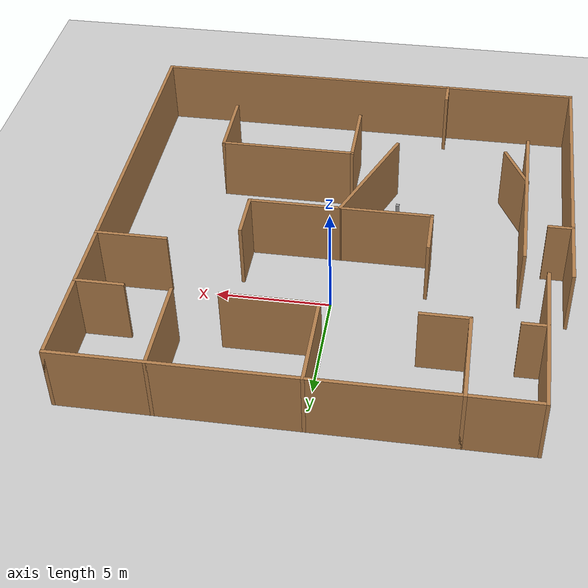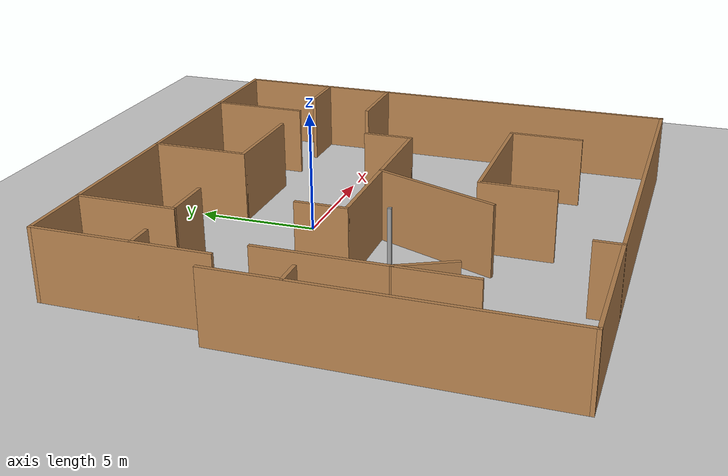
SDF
<sdf version="1.6">
 <world name="default">
  <light name="sun" type="directional">
   <pose>0 0 10 0 -0 0</pose>
   <diffuse>0.8 0.8 0.8 1</diffuse>
   <specular>0.2 0.2 0.2 1</specular>
   <attenuation>
    <range>1000</range>
    <constant>0.9</constant>
    <linear>0.01</linear>
    <quadratic>0.001</quadratic>
   </attenuation>
   <direction>-0.5 0.1 -0.9</direction>
  </light>
  <model name="ground_plane">
   <static>1</static>
   <link name="link">
    <collision name="collision">
     <geometry><plane><normal>0 0 1</normal><size>100 100</size></plane></geometry>
     <surface>
      <contact><collide_bitmask>65535</collide_bitmask></contact>
      <friction><ode><mu>100</mu><mu2>50</mu2></ode></friction>
     </surface>
    </collision>
    <visual name="visual">
     <cast_shadows>0</cast_shadows>
     <geometry><plane><normal>0 0 1</normal><size>100 100</size></plane></geometry>
     <material>
      <script><uri>file://media/materials/scripts/gazebo.material</uri><name>Gazebo/Grey</name></script>
     </material>
    </visual>
   </link>
  </model>
  <gravity>0 0 -9.8</gravity>
  <magnetic_field>6e-06 2.3e-05 -4.2e-05</magnetic_field>
  <atmosphere type="adiabatic"/>
  <physics name="default_physics" default="0" type="ode">
   <max_step_size>0.001</max_step_size>
   <real_time_factor>1</real_time_factor>
   <real_time_update_rate>1000</real_time_update_rate>
  </physics>
  <scene><ambient>0.4 0.4 0.4 1</ambient><background>0.7 0.7 0.7 1</background><shadows>1</shadows></scene>
  <spherical_coordinates>
   <surface_model>EARTH_WGS84</surface_model>
   <latitude_deg>0</latitude_deg>
   <longitude_deg>0</longitude_deg>
   <elevation>0</elevation>
   <heading_deg>0</heading_deg>
  </spherical_coordinates>
  <model name="ZY_world3">
   <pose>0 -3 0 0 -0 0</pose>
   <link name="Wall_0">
    <collision name="Wall_0_Collision">
     <geometry><box><size>3.15 0.15 3</size></box></geometry>
     <pose>0 0 1.5 0 -0 0</pose>
    </collision>
    <visual name="Wall_0_Visual">
     <pose>0 0 1.5 0 -0 0</pose>
     <geometry><box><size>3.15 0.15 3</size></box></geometry>
     <material>
      <script><uri>file://media/materials/scripts/gazebo.material</uri><name>Gazebo/Wood</name></script>
      <ambient>1 1 1 1</ambient>
     </material>
     <meta><layer>0</layer></meta>
    </visual>
    <pose>8.5 3 0 0 -0 0</pose>
   </link>
   <link name="Wall_11">
    <collision name="Wall_11_Collision">
     <geometry><box><size>0.15 0.15 2.5</size></box></geometry>
     <pose>0 0 1.25 0 -0 0</pose>
    </collision>
    <visual name="Wall_11_Visual">
     <pose>0 0 1.25 0 -0 0</pose>
     <geometry><box><size>0.15 0.15 2.5</size></box></geometry>
     <material>
      <script><uri>file://media/materials/scripts/gazebo.material</uri><name>Gazebo/Grey</name></script>
      <ambient>1 1 1 1</ambient>
     </material>
     <meta><layer>0</layer></meta>
    </visual>
    <pose>-2.41 -1.14 0 0 -0 0</pose>
   </link>
   <link name="Wall_14">
    <collision name="Wall_14_Collision">
     <geometry><box><size>3.15 0.15 3</size></box></geometry>
     <pose>0 0 1.5 0 -0 0</pose>
    </collision>
    <visual name="Wall_14_Visual">
     <pose>0 0 1.5 0 -0 0</pose>
     <geometry><box><size>3.15 0.15 3</size></box></geometry>
     <material>
      <script><uri>file://media/materials/scripts/gazebo.material</uri><name>Gazebo/Wood</name></script>
      <ambient>1 1 1 1</ambient>
     </material>
     <meta><layer>0</layer></meta>
    </visual>
    <pose>0 -5.5 0 0 -0 1.5708</pose>
   </link>
   <link name="Wall_15">
    <collision name="Wall_15_Collision">
     <geometry><box><size>6.15 0.15 3</size></box></geometry>
     <pose>0 0 1.5 0 -0 0</pose>
    </collision>
    <visual name="Wall_15_Visual">
     <pose>0 0 1.5 0 -0 0</pose>
     <geometry><box><size>6.15 0.15 3</size></box></geometry>
     <material>
      <script><uri>file://media/materials/scripts/gazebo.material</uri><name>Gazebo/Wood</name></script>
      <ambient>1 1 1 1</ambient>
     </material>
     <meta><layer>0</layer></meta>
    </visual>
    <pose>3 -4 0 0 -0 0</pose>
   </link>
   <link name="Wall_16">
    <collision name="Wall_16_Collision">
     <geometry><box><size>3.15 0.15 3</size></box></geometry>
     <pose>0 0 1.5 0 -0 0</pose>
    </collision>
    <visual name="Wall_16_Visual">
     <pose>0 0 1.5 0 -0 0</pose>
     <geometry><box><size>3.15 0.15 3</size></box></geometry>
     <material>
      <script><uri>file://media/materials/scripts/gazebo.material</uri><name>Gazebo/Wood</name></script>
      <ambient>1 1 1 1</ambient>
     </material>
     <meta><layer>0</layer></meta>
    </visual>
    <pose>6 -5.5 0 0 -0 -1.5708</pose>
   </link>
   <link name="Wall_18">
    <collision name="Wall_18_Collision">
     <geometry><box><size>19.15 0.15 3</size></box></geometry>
     <pose>0 0 1.5 0 -0 0</pose>
    </collision>
    <visual name="Wall_18_Visual">
     <pose>0 0 1.5 0 -0 0</pose>
     <geometry><box><size>19.15 0.15 3</size></box></geometry>
     <material>
      <script><uri>file://media/materials/scripts/gazebo.material</uri><name>Gazebo/Wood</name></script>
      <ambient>1 1 1 1</ambient>
     </material>
     <meta><layer>0</layer></meta>
    </visual>
    <pose>0.5 10 0 0 -0 0</pose>
   </link>
   <link name="Wall_19">
    <collision name="Wall_19_Collision">
     <geometry><box><size>20.15 0.15 3</size></box></geometry>
     <pose>0 0 1.5 0 -0 0</pose>
    </collision>
    <visual name="Wall_19_Visual">
     <pose>0 0 1.5 0 -0 0</pose>
     <geometry><box><size>20.15 0.15 3</size></box></geometry>
     <material>
      <script><uri>file://media/materials/scripts/gazebo.material</uri><name>Gazebo/Wood</name></script>
      <ambient>1 1 1 1</ambient>
     </material>
     <meta><layer>0</layer></meta>
    </visual>
    <pose>10 0 0 0 -0 -1.5708</pose>
   </link>
   <link name="Wall_20">
    <collision name="Wall_20_Collision">
     <geometry><box><size>20.15 0.15 3</size></box></geometry>
     <pose>0 0 1.5 0 -0 0</pose>
    </collision>
    <visual name="Wall_20_Visual">
     <pose>0 0 1.5 0 -0 0</pose>
     <geometry><box><size>20.15 0.15 3</size></box></geometry>
     <material>
      <script><uri>file://media/materials/scripts/gazebo.material</uri><name>Gazebo/Wood</name></script>
      <ambient>1 1 1 1</ambient>
     </material>
     <meta><layer>0</layer></meta>
    </visual>
    <pose>0 -10 0 0 -0 3.14159</pose>
   </link>
   <link name="Wall_21">
    <collision name="Wall_21_Collision">
     <geometry><box><size>13.15 0.15 3</size></box></geometry>
     <pose>0 0 1.5 0 -0 0</pose>
    </collision>
    <visual name="Wall_21_Visual">
     <pose>0 0 1.5 0 -0 0</pose>
     <geometry><box><size>13.15 0.15 3</size></box></geometry>
     <material>
      <script><uri>file://media/materials/scripts/gazebo.material</uri><name>Gazebo/Wood</name></script>
      <ambient>1 1 1 1</ambient>
     </material>
     <meta><layer>0</layer></meta>
    </visual>
    <pose>-10 -3.5 0 0 -0 1.5708</pose>
   </link>
   <link name="Wall_23">
    <collision name="Wall_23_Collision">
     <geometry><box><size>4.15 0.15 3</size></box></geometry>
     <pose>0 0 1.5 0 -0 0</pose>
    </collision>
    <visual name="Wall_23_Visual">
     <pose>0 0 1.5 0 -0 0</pose>
     <geometry><box><size>4.15 0.15 3</size></box></geometry>
     <material>
      <script><uri>file://media/materials/scripts/gazebo.material</uri><name>Gazebo/Wood</name></script>
      <ambient>1 1 1 1</ambient>
     </material>
     <meta><layer>0</layer></meta>
    </visual>
    <pose>-6 8 0 0 -0 -1.5708</pose>
   </link>
   <link name="Wall_25">
    <collision name="Wall_25_Collision">
     <geometry><box><size>4.15 0.15 3</size></box></geometry>
     <pose>0 0 1.5 0 -0 0</pose>
    </collision>
    <visual name="Wall_25_Visual">
     <pose>0 0 1.5 0 -0 0</pose>
     <geometry><box><size>4.15 0.15 3</size></box></geometry>
     <material>
      <script><uri>file://media/materials/scripts/gazebo.material</uri><name>Gazebo/Wood</name></script>
      <ambient>1 1 1 1</ambient>
     </material>
     <meta><layer>0</layer></meta>
    </visual>
    <pose>6 8 0 0 -0 1.5708</pose>
   </link>
   <link name="Wall_27">
    <collision name="Wall_27_Collision">
     <geometry><box><size>7.15 0.15 3</size></box></geometry>
     <pose>0 0 1.5 0 -0 0</pose>
    </collision>
    <visual name="Wall_27_Visual">
     <pose>0 0 1.5 0 -0 0</pose>
     <geometry><box><size>7.15 0.15 3</size></box></geometry>
     <material>
      <script><uri>file://media/materials/scripts/gazebo.material</uri><name>Gazebo/Wood</name></script>
      <ambient>1 1 1 1</ambient>
     </material>
     <meta><layer>0</layer></meta>
    </visual>
    <pose>-9 6.5 0 0 -0 -1.5708</pose>
   </link>
   <link name="Wall_31">
    <collision name="Wall_31_Collision">
     <geometry><box><size>1.15 0.15 3</size></box></geometry>
     <pose>0 0 1.5 0 -0 0</pose>
    </collision>
    <visual name="Wall_31_Visual">
     <pose>0 0 1.5 0 -0 0</pose>
     <geometry><box><size>1.15 0.15 3</size></box></geometry>
     <material>
      <script><uri>file://media/materials/scripts/gazebo.material</uri><name>Gazebo/Wood</name></script>
      <ambient>1 1 1 1</ambient>
     </material>
     <meta><layer>0</layer></meta>
    </visual>
    <pose>-4 -9.5 0 0 -0 1.5708</pose>
   </link>
   <link name="Wall_33">
    <collision name="Wall_33_Collision">
     <geometry><box><size>2.38607 0.15 3</size></box></geometry>
     <pose>0 0 1.5 0 -0 0</pose>
    </collision>
    <visual name="Wall_33_Visual">
     <pose>0 0 1.5 0 -0 0</pose>
     <geometry><box><size>2.38607 0.15 3</size></box></geometry>
     <material>
      <script><uri>file://media/materials/scripts/gazebo.material</uri><name>Gazebo/Wood</name></script>
      <ambient>1 1 1 1</ambient>
     </material>
     <meta><layer>0</layer></meta>
    </visual>
    <pose>-7.5 -4 0 0 -0 -1.10715</pose>
   </link>
   <link name="Wall_35">
    <collision name="Wall_35_Collision">
     <geometry><box><size>8.15 0.15 3</size></box></geometry>
     <pose>0 0 1.5 0 -0 0</pose>
    </collision>
    <visual name="Wall_35_Visual">
     <pose>0 0 1.5 0 -0 0</pose>
     <geometry><box><size>8.15 0.15 3</size></box></geometry>
     <material>
      <script><uri>file://media/materials/scripts/gazebo.material</uri><name>Gazebo/Wood</name></script>
      <ambient>1 1 1 1</ambient>
     </material>
     <meta><layer>0</layer></meta>
    </visual>
    <pose>-8 -2 0 0 -0 -1.5708</pose>
   </link>
   <link name="Wall_37">
    <collision name="Wall_37_Collision">
     <geometry><box><size>5.53517 0.15 3</size></box></geometry>
     <pose>0 0 1.5 0 -0 0</pose>
    </collision>
    <visual name="Wall_37_Visual">
     <pose>0 0 1.5 0 -0 0</pose>
     <geometry><box><size>5.53517 0.15 3</size></box></geometry>
     <material>
      <script><uri>file://media/materials/scripts/gazebo.material</uri><name>Gazebo/Wood</name></script>
      <ambient>1 1 1 1</ambient>
     </material>
     <meta><layer>0</layer></meta>
    </visual>
    <pose>-1 -2.5 0 0 -0 -1.9513</pose>
   </link>
   <link name="Wall_42">
    <collision name="Wall_42_Collision">
     <geometry><box><size>4.15 0.15 3</size></box></geometry>
     <pose>0 0 1.5 0 -0 0</pose>
    </collision>
    <visual name="Wall_42_Visual">
     <pose>0 0 1.5 0 -0 0</pose>
     <geometry><box><size>4.15 0.15 3</size></box></geometry>
     <material>
      <script><uri>file://media/materials/scripts/gazebo.material</uri><name>Gazebo/Wood</name></script>
      <ambient>1 1 1 1</ambient>
     </material>
     <meta><layer>0</layer></meta>
    </visual>
    <pose>0 8 0 0 -0 -1.5708</pose>
   </link>
   <link name="Wall_43">
    <collision name="Wall_43_Collision">
     <geometry><box><size>4.15 0.15 3</size></box></geometry>
     <pose>0 0 1.5 0 -0 0</pose>
    </collision>
    <visual name="Wall_43_Visual">
     <pose>0 0 1.5 0 -0 0</pose>
     <geometry><box><size>4.15 0.15 3</size></box></geometry>
     <material>
      <script><uri>file://media/materials/scripts/gazebo.material</uri><name>Gazebo/Wood</name></script>
      <ambient>1 1 1 1</ambient>
     </material>
     <meta><layer>0</layer></meta>
    </visual>
    <pose>2 6 0 0 -0 0</pose>
   </link>
   <link name="Wall_45">
    <collision name="Wall_45_Collision">
     <geometry><box><size>2.15 0.15 3</size></box></geometry>
     <pose>0 0 1.5 0 -0 0</pose>
    </collision>
    <visual name="Wall_45_Visual">
     <pose>0 0 1.5 0 -0 0</pose>
     <geometry><box><size>2.15 0.15 3</size></box></geometry>
     <material>
      <script><uri>file://media/materials/scripts/gazebo.material</uri><name>Gazebo/Wood</name></script>
      <ambient>1 1 1 1</ambient>
     </material>
     <meta><layer>0</layer></meta>
    </visual>
    <pose>-5 6 0 0 -0 0</pose>
   </link>
   <link name="Wall_47">
    <collision name="Wall_47_Collision">
     <geometry><box><size>2.15 0.15 3</size></box></geometry>
     <pose>0 0 1.5 0 -0 0</pose>
    </collision>
    <visual name="Wall_47_Visual">
     <pose>0 0 1.5 0 -0 0</pose>
     <geometry><box><size>2.15 0.15 3</size></box></geometry>
     <material>
      <script><uri>file://media/materials/scripts/gazebo.material</uri><name>Gazebo/Wood</name></script>
      <ambient>1 1 1 1</ambient>
     </material>
     <meta><layer>0</layer></meta>
    </visual>
    <pose>-4 1 0 0 -0 -1.5708</pose>
   </link>
   <link name="Wall_48">
    <collision name="Wall_48_Collision">
     <geometry><box><size>8.15 0.15 3</size></box></geometry>
     <pose>0 0 1.5 0 -0 0</pose>
    </collision>
    <visual name="Wall_48_Visual">
     <pose>0 0 1.5 0 -0 0</pose>
     <geometry><box><size>8.15 0.15 3</size></box></geometry>
     <material>
      <script><uri>file://media/materials/scripts/gazebo.material</uri><name>Gazebo/Wood</name></script>
      <ambient>1 1 1 1</ambient>
     </material>
     <meta><layer>0</layer></meta>
    </visual>
   </link>
   <link name="Wall_49">
    <collision name="Wall_49_Collision">
     <geometry><box><size>2.15 0.15 3</size></box></geometry>
     <pose>0 0 1.5 0 -0 0</pose>
    </collision>
    <visual name="Wall_49_Visual">
     <pose>0 0 1.5 0 -0 0</pose>
     <geometry><box><size>2.15 0.15 3</size></box></geometry>
     <material>
      <script><uri>file://media/materials/scripts/gazebo.material</uri><name>Gazebo/Wood</name></script>
      <ambient>1 1 1 1</ambient>
     </material>
     <meta><layer>0</layer></meta>
    </visual>
    <pose>4 1 0 0 -0 1.5708</pose>
   </link>
   <link name="Wall_5">
    <collision name="Wall_5_Collision">
     <geometry><box><size>1.15 0.15 3</size></box></geometry>
     <pose>0 0 1.5 0 -0 0</pose>
    </collision>
    <visual name="Wall_5_Visual">
     <pose>0 0 1.5 0 -0 0</pose>
     <geometry><box><size>1.15 0.15 3</size></box></geometry>
     <material>
      <script><uri>file://media/materials/scripts/gazebo.material</uri><name>Gazebo/Wood</name></script>
      <ambient>1 1 1 1</ambient>
     </material>
     <meta><layer>0</layer></meta>
    </visual>
    <pose>-8.5 6 0 0 -0 0</pose>
   </link>
   <link name="Wall_7">
    <collision name="Wall_7_Collision">
     <geometry><box><size>2.15 0.15 3</size></box></geometry>
     <pose>0 0 1.5 0 -0 0</pose>
    </collision>
    <visual name="Wall_7_Visual">
     <pose>0 0 1.5 0 -0 0</pose>
     <geometry><box><size>2.15 0.15 3</size></box></geometry>
     <material>
      <script><uri>file://media/materials/scripts/gazebo.material</uri><name>Gazebo/Wood</name></script>
      <ambient>1 1 1 1</ambient>
     </material>
     <meta><layer>0</layer></meta>
    </visual>
    <pose>9.0 6 0 0 -0 0</pose>
   </link>
   <link name="Wall_50">
    <collision name="Wall_50_Collision">
     <geometry><box><size>1.15 0.15 3</size></box></geometry>
     <pose>0 0 1.5 0 -0 0</pose>
    </collision>
    <visual name="Wall_50_Visual">
     <pose>0 0 1.5 0 -0 0</pose>
     <geometry><box><size>1.15 0.15 3</size></box></geometry>
     <material>
      <script><uri>file://media/materials/scripts/gazebo.material</uri><name>Gazebo/Wood</name></script>
      <ambient>1 1 1 1</ambient>
     </material>
     <meta><layer>0</layer></meta>
    </visual>
    <pose>-9.5 0 0 0 -0 0</pose>
   </link>
   <static>1</static>
  </model>
 </world>
</sdf>
